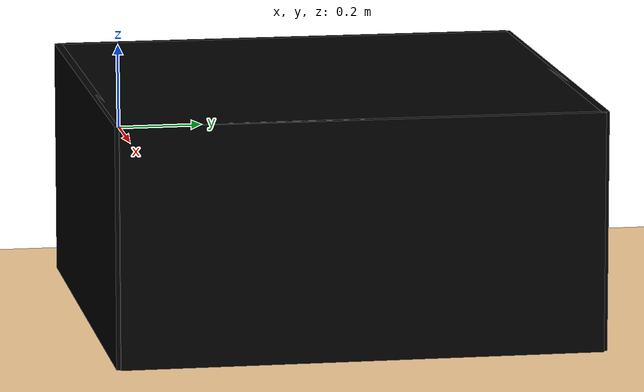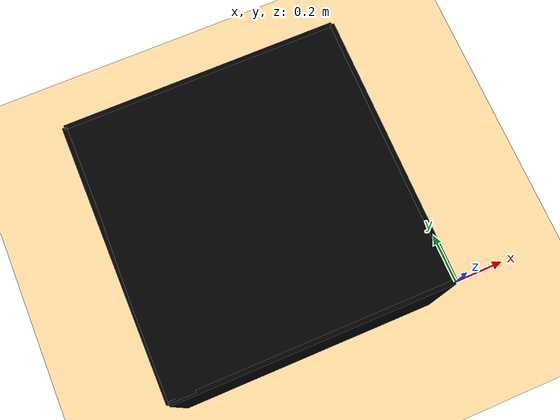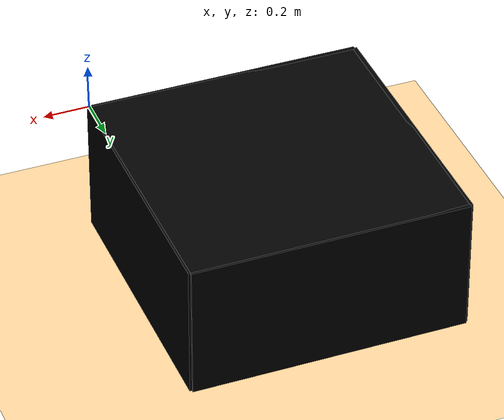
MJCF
<mujoco model="ur5">
    <compiler angle="radian" meshdir="meshes" coordinate="local" convexhull="false" />

    <option gravity="0 0 0" cone="elliptic" timestep="0.02" solver="CG"/>

    <size njmax="500" nconmax="100" />

    <visual>
        <map znear="0.001" />
    </visual>

    <default>
        <light castshadow="false" diffuse="1 1 1" />
        <joint frictionloss="1" damping="1" />
        <camera fovy="60" />
        <motor gear="0.8"/>
        <velocity kv="10"/>
        <position kp="5"/>

        <default class="object1">
            <geom type="capsule" material="object1" size="0.03 0.015"/>
        </default>

        <default class="object2">
            <geom type="ellipsoid" material="object2" size="0.045 0.03 0.021"/>
        </default>

        <default class="object3">
            <geom type="box" material="object3" size="0.045 0.03 0.015"/>
        </default>

        <default class="object4">
            <geom type="cylinder" material="object4" size="0.03 0.015" condim="4" friction="1 .01 .01"/>
        </default>

        <default class="object5">
            <geom type="sphere" material="object5" size="0.03"/>
        </default>

    </default>

    <asset>
        <mesh name="square_peg" file="square_peg.stl" scale="0.009 0.009 0.0035" />  <!-- 10mm 40mm -->
        <mesh name="square_hole" file="square_hole.stl" scale="0.01 0.01 0.003" /> <!-- 40mm 40mm -->

        <!-- round hole -->
        <mesh name="h1" file="h1.stl" scale="0.01 0.01 0.003" />
        <mesh name="h2" file="h2.stl" scale="0.01 0.01 0.003" />
        <mesh name="h3" file="h3.stl" scale="0.01 0.01 0.003" />
        <mesh name="h4" file="h4.stl" scale="0.01 0.01 0.003" />
        <mesh name="h5" file="h5.stl" scale="0.01 0.01 0.003" />
        <mesh name="h6" file="h6.stl" scale="0.01 0.01 0.003" />
        <mesh name="h7" file="h7.stl" scale="0.01 0.01 0.003" />
        <mesh name="h8" file="h8.stl" scale="0.01 0.01 0.003" />
        <mesh name="h9" file="h9.stl" scale="0.01 0.01 0.003" />
        <mesh name="h10" file="h10.stl" scale="0.01 0.01 0.003" />
        <mesh name="h11" file="h11.stl" scale="0.01 0.01 0.003" />
        <mesh name="h12" file="h12.stl" scale="0.01 0.01 0.003" />
        <mesh name="h13" file="h13.stl" scale="0.01 0.01 0.003" />
        <mesh name="h14" file="h14.stl" scale="0.01 0.01 0.003" />
        <mesh name="h15" file="h15.stl" scale="0.01 0.01 0.003" />
        <mesh name="h16" file="h16.stl" scale="0.01 0.01 0.003" />

        <!-- square hole -->
        <mesh name="s1" file="s1.stl" scale="0.015 0.015 0.003" />
        <mesh name="s2" file="s2.stl" scale="0.015 0.015 0.003" />
        <mesh name="s3" file="s3.stl" scale="0.015 0.015 0.003" />
        <mesh name="s4" file="s4.stl" scale="0.015 0.015 0.003" />

        <mesh name="new_hole" file="new_hole.stl" scale="0.01 0.01 0.003" />
        <mesh name="hole" file="hole.stl" scale="0.01 0.01 0.002" />
        <mesh name="hole1" file="hole1.stl" scale="0.01 0.01 0.002" /> <!-- size: (40mm) 0.08 0.08 (9.47mm)-->
        <mesh name="hole2" file="hole2.stl" scale="0.01 0.01 0.002" />
        <mesh name="peg" file="peg.stl" scale="0.011 0.011 0.0025" /> <!-- size: 7.75mm 40mm -->
        <mesh file="base.stl" />
        <mesh file="shoulder.stl" />
        <mesh file="upperarm.stl" />
        <mesh file="forearm.stl" />
        <mesh file="wrist1.stl" />
        <mesh file="wrist2.stl" />
        <mesh file="wrist3.stl" />
        <mesh file="kinova_robotiq_coupler.stl" />
        <mesh file="robotiq_85_base_link.stl" />
        <mesh file="robotiq_85_finger_link.stl" />
        <mesh file="robotiq_85_finger_tip_link.stl" />
        <mesh file="robotiq_85_inner_knuckle_link.stl" />
        <mesh file="robotiq_85_knuckle_link.stl" />
        <material name="RobMat" specular="0.9" shininess="0.5" reflectance="0" rgba="0.7 0.7 0.7 1" emission="0.1" />
        <material name="GriMat" specular="0.9" shininess="0.5" reflectance="0" rgba="0.1 0.1 0.1 1" emission="0.1" />
        <material name="BasketMat" specular="0" shininess="0" reflectance="0" rgba="0.26 0.16 0.16796875 1" emission="0" />
        <material name="Light" specular="0" shininess="0.6" reflectance="0.9" rgba="0.5 0.5 1 1" emission="0.7" />
        <texture name="texgeom" type="cube" builtin="flat" mark="cross" width="128" height="128"
            rgb1="0.6 0.6 0.6" rgb2="0.6 0.6 0.6" markrgb="1 1 1"/>
        <material name='object1' texture="texgeom" texuniform="true" rgba=".4 .9 .6 1" />
        <material name='object2' texture="texgeom" texuniform="true" rgba=".4 .6 .9 1" />
        <material name='object3' texture="texgeom" texuniform="true" rgba=".4 .9 .9 1" />
        <material name='object4' texture="texgeom" texuniform="true" rgba=".8 .6 .8 1" />
        <material name='object5' texture="texgeom" texuniform="true" rgba=".9 .1 .1 1" />
    </asset>

    <worldbody>
        <body pos="-0.16 0.90 0.02" euler="4.71238898 0 3.14159265">
            <body euler="0 -0.82 0">
                <camera name="workbench_camera" euler="0.25 0 0" fovy="43" />
            </body>
        </body>
        <body pos="-0.6 0.6 1" >
            <camera name="upper_camera" fovy="41" />
        </body>

        <light directional="true" pos="-0.5 0.5 3" dir="0 0 -1" />
        <light directional="false" pos="-0.5 0.5 1.5" dir="0 -1 0" />
        <geom name="workbench_down" pos="-0.6 0.6 -0.25" size="0.6 0.6 0.25" type="box" rgba="0 0 0 1" material="BasketMat" />
        <geom name="workbench_down_side1" pos="-1.2 0.6 -0.30" size="0.01 0.6 0.3" type="box" rgba="0 0 0 1" material="BasketMat" />
        <geom name="workbench_down_side2" pos="0 0.6 -0.30" size="0.01 0.6 0.3" type="box" rgba="0 0 0 1" material="BasketMat" />
        <geom name="workbench_down_side3" pos="-0.6 0 -0.30" size="0.6 0.01 0.3" type="box" rgba="0 0 0 1" material="BasketMat" />
        <geom name="workbench_down_side4" pos="-0.6 1.2 -0.30" size="0.6 0.01 0.3" type="box" rgba="0 0 0 1" material="BasketMat" />
        <geom name="floor" pos="0 0 -0.66" size="10 10 1" type="plane" rgba="1 0.83 0.61 1" material="BasketMat" />

        <!-- round hole -->

        <!-- square hole -->
        <!-- upper height: 0.1 -->

    </worldbody>

    <equality>
    </equality>

    <actuator>
        <velocity name="joint1_position" joint="joint1" />
        <velocity name="joint2_position" joint="joint2" />
        <velocity name="joint3_position" joint="joint3" />
        <velocity name="rx" joint="joint7" />
        <velocity name="ry" joint="joint8" />
        <velocity name="rz" joint="joint6" />
    </actuator>

    <sensor>
        <force name="force_sensor" site="force_site" />
        <torque name="torque_sensor" site="torque_site" />
    </sensor>

</mujoco>
